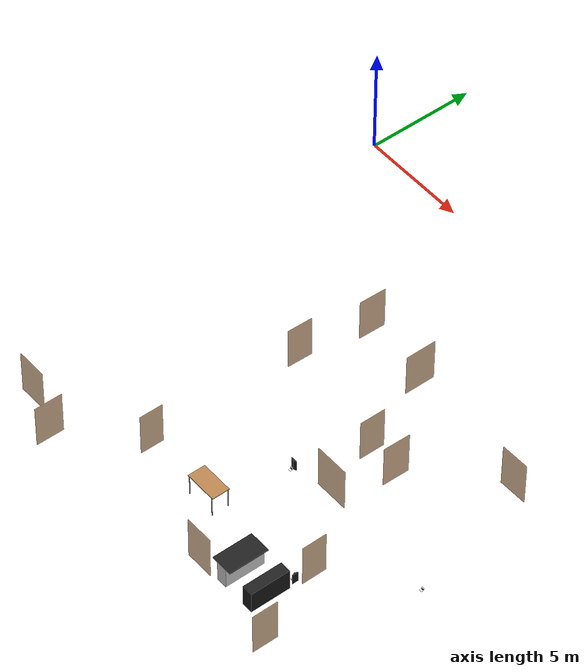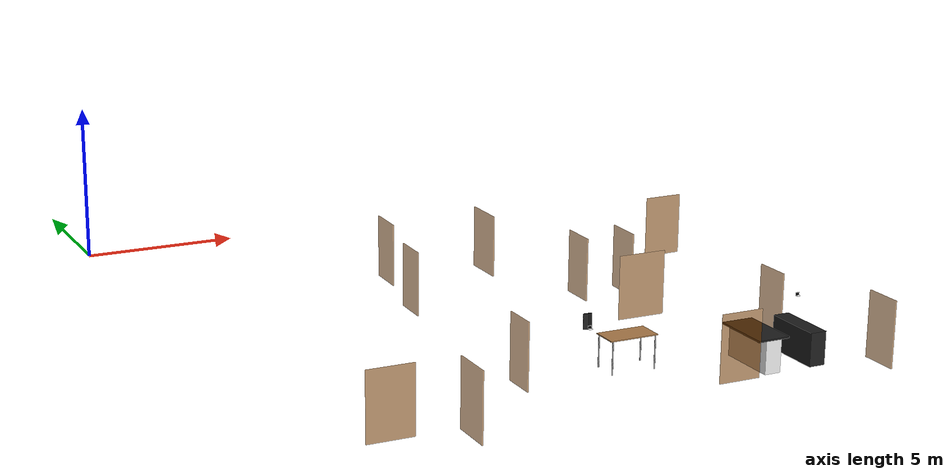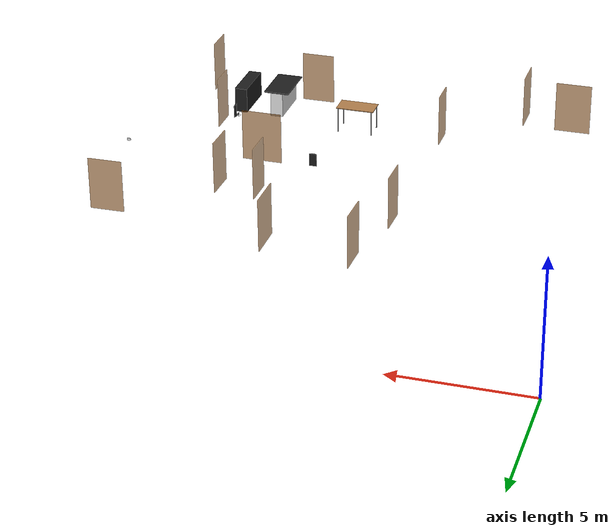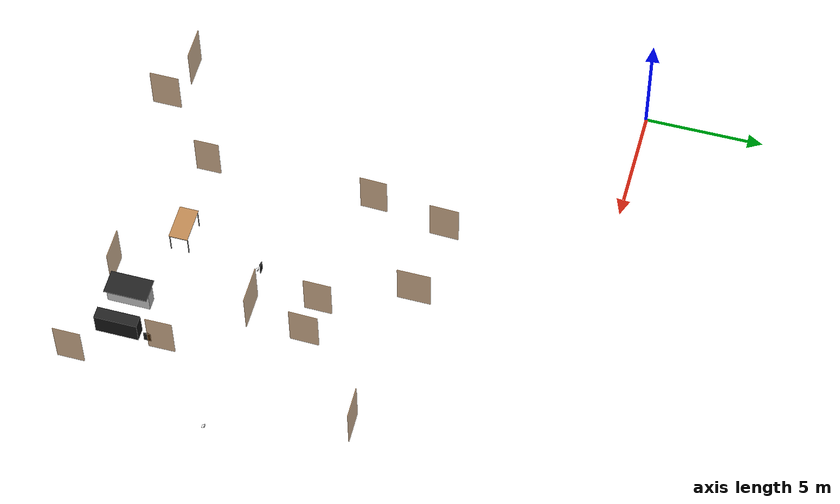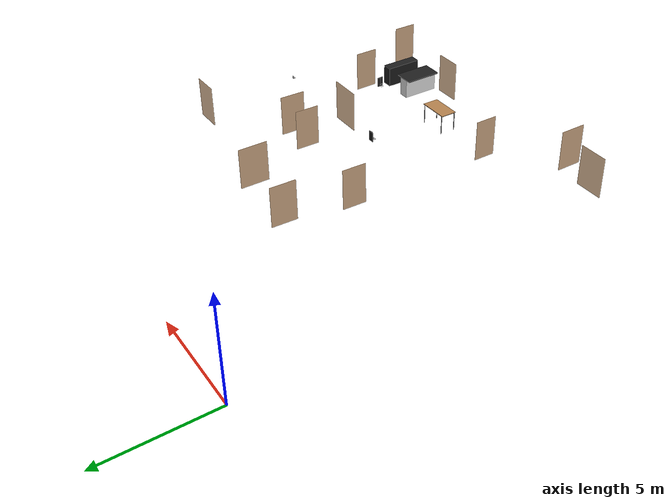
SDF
<sdf version="1.7">
 <world name="world">
  <scene><ambient>0.8 0.8 0.8 1.0</ambient><background>0 0 0</background><grid>false</grid></scene>
  <include><uri>model://sun</uri></include>
  <model name="door_kitchen">
   <pose>16.080245142462395 -16.25646027308161 0.0 0 0 -1.562457432607192</pose>
   <link name="right">
    <pose>0 0 1.01 0 0 0</pose>
    <visual name="right_visual">
     <geometry><box><size>1.109589746622178 0.03 2.0</size></box></geometry>
     <material><ambient>0.5 0.25 0 0.6</ambient><diffuse>0.5 0.25 0 0.6</diffuse></material>
    </visual>
    <collision name="right_collision">
     <geometry><box><size>1.109589746622178 0.03 2.0</size></box></geometry>
     <surface><contact><collide_bitmask>0x02</collide_bitmask></contact></surface>
    </collision>
    <inertial>
     <mass>50.0</mass>
     <inertia><ixx>16.670416666666668</ixx><iyy>21.79662252420446</iyy><izz>5.133705857537789</izz></inertia>
    </inertial>
   </link>
   <joint name="right_joint" type="revolute">
    <parent>world</parent>
    <child>right</child>
    <axis><xyz>0 0 -1</xyz><limit><lower>0</lower><upper>1.57</upper></limit></axis>
    <pose>0.559794873311089 0 0 0 0 0</pose>
   </joint>
   <plugin name="door_kitchen" filename="libdoor.so">
    <v_max_door>0.5</v_max_door>
    <a_max_door>0.3</a_max_door>
    <a_nom_door>0.15</a_nom_door>
    <dx_min_door>0.01</dx_min_door>
    <f_max_door>500.0</f_max_door>
    <door name="door_kitchen" type="SwingDoor" left_joint_name="empty_joint" right_joint_name="right_joint"/>
   </plugin>
  </model>
  <model name="door_bathroom1">
   <pose>17.428003476694457 -19.630355640118523 0.0 0 0 1.5695099001705253</pose>
   <link name="right">
    <pose>0 0 1.01 0 0 0</pose>
    <visual name="right_visual">
     <geometry><box><size>1.145627315076036 0.03 2.0</size></box></geometry>
     <material><ambient>0.5 0.25 0 0.6</ambient><diffuse>0.5 0.25 0 0.6</diffuse></material>
    </visual>
    <collision name="right_collision">
     <geometry><box><size>1.145627315076036 0.03 2.0</size></box></geometry>
     <surface><contact><collide_bitmask>0x02</collide_bitmask></contact></surface>
    </collision>
    <inertial>
     <mass>50.0</mass>
     <inertia><ixx>16.670416666666668</ixx><iyy>22.13525810436803</iyy><izz>5.472341437701363</izz></inertia>
    </inertial>
   </link>
   <joint name="right_joint" type="revolute">
    <parent>world</parent>
    <child>right</child>
    <axis><xyz>0 0 -1</xyz><limit><lower>0</lower><upper>1.57</upper></limit></axis>
    <pose>0.577813657538018 0 0 0 0 0</pose>
   </joint>
   <plugin name="door_bathroom1" filename="libdoor.so">
    <v_max_door>0.5</v_max_door>
    <a_max_door>0.3</a_max_door>
    <a_nom_door>0.15</a_nom_door>
    <dx_min_door>0.01</dx_min_door>
    <f_max_door>500.0</f_max_door>
    <door name="door_bathroom1" type="SwingDoor" left_joint_name="empty_joint" right_joint_name="right_joint"/>
   </plugin>
  </model>
  <model name="door_warehouse1">
   <pose>7.325118281252149 -17.05888332344462 0.0 0 0 1.5707963267948966</pose>
   <link name="right">
    <pose>0 0 1.01 0 0 0</pose>
    <visual name="right_visual">
     <geometry><box><size>1.0544860697012142 0.03 2.0</size></box></geometry>
     <material><ambient>0.5 0.25 0 0.6</ambient><diffuse>0.5 0.25 0 0.6</diffuse></material>
    </visual>
    <collision name="right_collision">
     <geometry><box><size>1.0544860697012142 0.03 2.0</size></box></geometry>
     <surface><contact><collide_bitmask>0x02</collide_bitmask></contact></surface>
    </collision>
    <inertial>
     <mass>50.0</mass>
     <inertia><ixx>16.670416666666668</ixx><iyy>21.299753629974642</iyy><izz>4.6368369633079745</izz></inertia>
    </inertial>
   </link>
   <joint name="right_joint" type="revolute">
    <parent>world</parent>
    <child>right</child>
    <axis><xyz>0 0 -1</xyz><limit><lower>0</lower><upper>1.57</upper></limit></axis>
    <pose>0.5322430348506071 0 0 0 0 0</pose>
   </joint>
   <plugin name="door_warehouse1" filename="libdoor.so">
    <v_max_door>0.5</v_max_door>
    <a_max_door>0.3</a_max_door>
    <a_nom_door>0.15</a_nom_door>
    <dx_min_door>0.01</dx_min_door>
    <f_max_door>500.0</f_max_door>
    <door name="door_warehouse1" type="SwingDoor" left_joint_name="empty_joint" right_joint_name="right_joint"/>
   </plugin>
  </model>
  <model name="door_warehouse2">
   <pose>7.365881657643422 -9.8875816241503 0.0 0 0 -1.5939307383721164</pose>
   <link name="right">
    <pose>0 0 1.01 0 0 0</pose>
    <visual name="right_visual">
     <geometry><box><size>1.145935674024048 0.03 2.0</size></box></geometry>
     <material><ambient>0.5 0.25 0 0.6</ambient><diffuse>0.5 0.25 0 0.6</diffuse></material>
    </visual>
    <collision name="right_collision">
     <geometry><box><size>1.145935674024048 0.03 2.0</size></box></geometry>
     <surface><contact><collide_bitmask>0x02</collide_bitmask></contact></surface>
    </collision>
    <inertial>
     <mass>50.0</mass>
     <inertia><ixx>16.670416666666668</ixx><iyy>22.13820237083729</iyy><izz>5.475285704170623</izz></inertia>
    </inertial>
   </link>
   <joint name="right_joint" type="revolute">
    <parent>world</parent>
    <child>right</child>
    <axis><xyz>0 0 -1</xyz><limit><lower>0</lower><upper>1.57</upper></limit></axis>
    <pose>0.577967837012024 0 0 0 0 0</pose>
   </joint>
   <plugin name="door_warehouse2" filename="libdoor.so">
    <v_max_door>0.5</v_max_door>
    <a_max_door>0.3</a_max_door>
    <a_nom_door>0.15</a_nom_door>
    <dx_min_door>0.01</dx_min_door>
    <f_max_door>500.0</f_max_door>
    <door name="door_warehouse2" type="SwingDoor" left_joint_name="empty_joint" right_joint_name="right_joint"/>
   </plugin>
  </model>
  <model name="door_mini_rrl">
   <pose>11.262049732117953 -7.104056498998965 0.0 0 0 1.5709644434662853</pose>
   <link name="right">
    <pose>0 0 1.01 0 0 0</pose>
    <visual name="right_visual">
     <geometry><box><size>1.4048548915879961 0.03 2.0</size></box></geometry>
     <material><ambient>0.5 0.25 0 0.6</ambient><diffuse>0.5 0.25 0 0.6</diffuse></material>
    </visual>
    <collision name="right_collision">
     <geometry><box><size>1.4048548915879961 0.03 2.0</size></box></geometry>
     <surface><contact><collide_bitmask>0x02</collide_bitmask></contact></surface>
    </collision>
    <inertial>
     <mass>50.0</mass>
     <inertia><ixx>16.670416666666668</ixx><iyy>24.89007194341134</iyy><izz>8.227155276744668</izz></inertia>
    </inertial>
   </link>
   <joint name="right_joint" type="revolute">
    <parent>world</parent>
    <child>right</child>
    <axis><xyz>0 0 -1</xyz><limit><lower>0</lower><upper>1.57</upper></limit></axis>
    <pose>0.7074274457939981 0 0 0 0 0</pose>
   </joint>
   <plugin name="door_mini_rrl" filename="libdoor.so">
    <v_max_door>0.5</v_max_door>
    <a_max_door>0.3</a_max_door>
    <a_nom_door>0.15</a_nom_door>
    <dx_min_door>0.01</dx_min_door>
    <f_max_door>500.0</f_max_door>
    <door name="door_mini_rrl" type="SwingDoor" left_joint_name="empty_joint" right_joint_name="right_joint"/>
   </plugin>
  </model>
  <model name="door_office">
   <pose>7.937768141452234 -6.737632100278285 0.0 0 0 1.5431487698929705</pose>
   <link name="right">
    <pose>0 0 1.01 0 0 0</pose>
    <visual name="right_visual">
     <geometry><box><size>1.23763989223551 0.03 2.0</size></box></geometry>
     <material><ambient>0.5 0.25 0 0.6</ambient><diffuse>0.5 0.25 0 0.6</diffuse></material>
    </visual>
    <collision name="right_collision">
     <geometry><box><size>1.23763989223551 0.03 2.0</size></box></geometry>
     <surface><contact><collide_bitmask>0x02</collide_bitmask></contact></surface>
    </collision>
    <inertial>
     <mass>50.0</mass>
     <inertia><ixx>16.670416666666668</ixx><iyy>23.048968761886353</iyy><izz>6.3860520952196875</izz></inertia>
    </inertial>
   </link>
   <joint name="right_joint" type="revolute">
    <parent>world</parent>
    <child>right</child>
    <axis><xyz>0 0 -1</xyz><limit><lower>0</lower><upper>1.57</upper></limit></axis>
    <pose>0.623819946117755 0 0 0 0 0</pose>
   </joint>
   <plugin name="door_office" filename="libdoor.so">
    <v_max_door>0.5</v_max_door>
    <a_max_door>0.3</a_max_door>
    <a_nom_door>0.15</a_nom_door>
    <dx_min_door>0.01</dx_min_door>
    <f_max_door>500.0</f_max_door>
    <door name="door_office" type="SwingDoor" left_joint_name="empty_joint" right_joint_name="right_joint"/>
   </plugin>
  </model>
  <model name="door_recordings">
   <pose>17.571492940198677 -7.8671334262709545 0.0 0 0 -3.123409491376528</pose>
   <link name="right">
    <pose>0 0 1.01 0 0 0</pose>
    <visual name="right_visual">
     <geometry><box><size>1.2818565879323982 0.03 2.0</size></box></geometry>
     <material><ambient>0.5 0.25 0 0.6</ambient><diffuse>0.5 0.25 0 0.6</diffuse></material>
    </visual>
    <collision name="right_collision">
     <geometry><box><size>1.2818565879323982 0.03 2.0</size></box></geometry>
     <surface><contact><collide_bitmask>0x02</collide_bitmask></contact></surface>
    </collision>
    <inertial>
     <mass>50.0</mass>
     <inertia><ixx>16.670416666666668</ixx><iyy>23.513151300107044</iyy><izz>6.850234633440376</izz></inertia>
    </inertial>
   </link>
   <joint name="right_joint" type="revolute">
    <parent>world</parent>
    <child>right</child>
    <axis><xyz>0 0 -1</xyz><limit><lower>0</lower><upper>1.57</upper></limit></axis>
    <pose>0.6459282939661991 0 0 0 0 0</pose>
   </joint>
   <plugin name="door_recordings" filename="libdoor.so">
    <v_max_door>0.5</v_max_door>
    <a_max_door>0.3</a_max_door>
    <a_nom_door>0.15</a_nom_door>
    <dx_min_door>0.01</dx_min_door>
    <f_max_door>500.0</f_max_door>
    <door name="door_recordings" type="SwingDoor" left_joint_name="empty_joint" right_joint_name="right_joint"/>
   </plugin>
  </model>
  <model name="door_closet">
   <pose>2.567656634711677 -19.15182947860628 0.0 0 0 3.141165260570925</pose>
   <link name="right">
    <pose>0 0 1.01 0 0 0</pose>
    <visual name="right_visual">
     <geometry><box><size>1.3813464334366092 0.03 2.0</size></box></geometry>
     <material><ambient>0.5 0.25 0 0.6</ambient><diffuse>0.5 0.25 0 0.6</diffuse></material>
    </visual>
    <collision name="right_collision">
     <geometry><box><size>1.3813464334366092 0.03 2.0</size></box></geometry>
     <surface><contact><collide_bitmask>0x02</collide_bitmask></contact></surface>
    </collision>
    <inertial>
     <mass>50.0</mass>
     <inertia><ixx>16.670416666666668</ixx><iyy>24.61715820486684</iyy><izz>7.95424153820017</izz></inertia>
    </inertial>
   </link>
   <joint name="right_joint" type="revolute">
    <parent>world</parent>
    <child>right</child>
    <axis><xyz>0 0 -1</xyz><limit><lower>0</lower><upper>1.57</upper></limit></axis>
    <pose>0.6956732167183046 0 0 0 0 0</pose>
   </joint>
   <plugin name="door_closet" filename="libdoor.so">
    <v_max_door>0.5</v_max_door>
    <a_max_door>0.3</a_max_door>
    <a_nom_door>0.15</a_nom_door>
    <dx_min_door>0.01</dx_min_door>
    <f_max_door>500.0</f_max_door>
    <door name="door_closet" type="SwingDoor" left_joint_name="empty_joint" right_joint_name="right_joint"/>
   </plugin>
  </model>
  <model name="door_rrl">
   <pose>12.727222051301975 -10.716377478932754 0.0 0 0 1.5616494156602039</pose>
   <link name="right">
    <pose>0 0 1.01 0 0 0</pose>
    <visual name="right_visual">
     <geometry><box><size>1.1623851166268635 0.03 2.0</size></box></geometry>
     <material><ambient>0.5 0.25 0 0.6</ambient><diffuse>0.5 0.25 0 0.6</diffuse></material>
    </visual>
    <collision name="right_collision">
     <geometry><box><size>1.1623851166268635 0.03 2.0</size></box></geometry>
     <surface><contact><collide_bitmask>0x02</collide_bitmask></contact></surface>
    </collision>
    <inertial>
     <mass>50.0</mass>
     <inertia><ixx>16.670416666666668</ixx><iyy>22.296413163981864</iyy><izz>5.633496497315196</izz></inertia>
    </inertial>
   </link>
   <joint name="right_joint" type="revolute">
    <parent>world</parent>
    <child>right</child>
    <axis><xyz>0 0 -1</xyz><limit><lower>0</lower><upper>1.57</upper></limit></axis>
    <pose>0.5861925583134318 0 0 0 0 0</pose>
   </joint>
   <plugin name="door_rrl" filename="libdoor.so">
    <v_max_door>0.5</v_max_door>
    <a_max_door>0.3</a_max_door>
    <a_nom_door>0.15</a_nom_door>
    <dx_min_door>0.01</dx_min_door>
    <f_max_door>500.0</f_max_door>
    <door name="door_rrl" type="SwingDoor" left_joint_name="empty_joint" right_joint_name="right_joint"/>
   </plugin>
  </model>
  <model name="door_cafeteria">
   <pose>13.459129316830579 -13.296819125933453 0.0 0 0 0.00034506554875947566</pose>
   <link name="right">
    <pose>0 0 1.01 0 0 0</pose>
    <visual name="right_visual">
     <geometry><box><size>1.5409707459290378 0.03 2.0</size></box></geometry>
     <material><ambient>0.5 0.25 0 0.6</ambient><diffuse>0.5 0.25 0 0.6</diffuse></material>
    </visual>
    <collision name="right_collision">
     <geometry><box><size>1.5409707459290378 0.03 2.0</size></box></geometry>
     <surface><contact><collide_bitmask>0x02</collide_bitmask></contact></surface>
    </collision>
    <inertial>
     <mass>50.0</mass>
     <inertia><ixx>16.670416666666668</ixx><iyy>26.56079516587123</iyy><izz>9.897878499204564</izz></inertia>
    </inertial>
   </link>
   <joint name="right_joint" type="revolute">
    <parent>world</parent>
    <child>right</child>
    <axis><xyz>0 0 -1</xyz><limit><lower>0</lower><upper>1.57</upper></limit></axis>
    <pose>0.7754853729645189 0 0 0 0 0</pose>
   </joint>
   <plugin name="door_cafeteria" filename="libdoor.so">
    <v_max_door>0.5</v_max_door>
    <a_max_door>0.3</a_max_door>
    <a_nom_door>0.15</a_nom_door>
    <dx_min_door>0.01</dx_min_door>
    <f_max_door>500.0</f_max_door>
    <door name="door_cafeteria" type="SwingDoor" left_joint_name="empty_joint" right_joint_name="right_joint"/>
   </plugin>
  </model>
  <model name="door_bathroom2">
   <pose>4.527856701036794 -19.8008224706388 0.0 0 0 -1.5707963267948966</pose>
   <link name="right">
    <pose>0 0 1.01 0 0 0</pose>
    <visual name="right_visual">
     <geometry><box><size>1.2545269131443122 0.03 2.0</size></box></geometry>
     <material><ambient>0.5 0.25 0 0.6</ambient><diffuse>0.5 0.25 0 0.6</diffuse></material>
    </visual>
    <collision name="right_collision">
     <geometry><box><size>1.2545269131443122 0.03 2.0</size></box></geometry>
     <surface><contact><collide_bitmask>0x02</collide_bitmask></contact></surface>
    </collision>
    <inertial>
     <mass>50.0</mass>
     <inertia><ixx>16.670416666666668</ixx><iyy>23.224324065847487</iyy><izz>6.561407399180819</izz></inertia>
    </inertial>
   </link>
   <joint name="right_joint" type="revolute">
    <parent>world</parent>
    <child>right</child>
    <axis><xyz>0 0 -1</xyz><limit><lower>0</lower><upper>1.57</upper></limit></axis>
    <pose>0.6322634565721561 0 0 0 0 0</pose>
   </joint>
   <plugin name="door_bathroom2" filename="libdoor.so">
    <v_max_door>0.5</v_max_door>
    <a_max_door>0.3</a_max_door>
    <a_nom_door>0.15</a_nom_door>
    <dx_min_door>0.01</dx_min_door>
    <f_max_door>500.0</f_max_door>
    <door name="door_bathroom2" type="SwingDoor" left_joint_name="empty_joint" right_joint_name="right_joint"/>
   </plugin>
  </model>
  <model name="door_servers">
   <pose>14.277994487649003 -10.834891569593305 0.0 0 0 -1.589951878239416</pose>
   <link name="right">
    <pose>0 0 1.01 0 0 0</pose>
    <visual name="right_visual">
     <geometry><box><size>1.2142160836735563 0.03 2.0</size></box></geometry>
     <material><ambient>0.5 0.25 0 0.6</ambient><diffuse>0.5 0.25 0 0.6</diffuse></material>
    </visual>
    <collision name="right_collision">
     <geometry><box><size>1.2142160836735563 0.03 2.0</size></box></geometry>
     <surface><contact><collide_bitmask>0x02</collide_bitmask></contact></surface>
    </collision>
    <inertial>
     <mass>50.0</mass>
     <inertia><ixx>16.670416666666668</ixx><iyy>22.809669574381456</iyy><izz>6.146752907714786</izz></inertia>
    </inertial>
   </link>
   <joint name="right_joint" type="revolute">
    <parent>world</parent>
    <child>right</child>
    <axis><xyz>0 0 -1</xyz><limit><lower>0</lower><upper>1.57</upper></limit></axis>
    <pose>0.6121080418367781 0 0 0 0 0</pose>
   </joint>
   <plugin name="door_servers" filename="libdoor.so">
    <v_max_door>0.5</v_max_door>
    <a_max_door>0.3</a_max_door>
    <a_nom_door>0.15</a_nom_door>
    <dx_min_door>0.01</dx_min_door>
    <f_max_door>500.0</f_max_door>
    <door name="door_servers" type="SwingDoor" left_joint_name="empty_joint" right_joint_name="right_joint"/>
   </plugin>
  </model>
  <model name="door_entrance">
   <pose>13.026440893176261 -19.214922027623263 0.0 0 0 0.0</pose>
   <link name="right">
    <pose>0 0 1.01 0 0 0</pose>
    <visual name="right_visual">
     <geometry><box><size>1.2890365354624291 0.03 2.0</size></box></geometry>
     <material><ambient>0.5 0.25 0 0.6</ambient><diffuse>0.5 0.25 0 0.6</diffuse></material>
    </visual>
    <collision name="right_collision">
     <geometry><box><size>1.2890365354624291 0.03 2.0</size></box></geometry>
     <surface><contact><collide_bitmask>0x02</collide_bitmask></contact></surface>
    </collision>
    <inertial>
     <mass>50.0</mass>
     <inertia><ixx>16.670416666666668</ixx><iyy>23.590063290654097</iyy><izz>6.927146623987427</izz></inertia>
    </inertial>
   </link>
   <joint name="right_joint" type="revolute">
    <parent>world</parent>
    <child>right</child>
    <axis><xyz>0 0 -1</xyz><limit><lower>0</lower><upper>1.57</upper></limit></axis>
    <pose>0.6495182677312146 0 0 0 0 0</pose>
   </joint>
   <plugin name="door_entrance" filename="libdoor.so">
    <v_max_door>0.5</v_max_door>
    <a_max_door>0.3</a_max_door>
    <a_nom_door>0.15</a_nom_door>
    <dx_min_door>0.01</dx_min_door>
    <f_max_door>500.0</f_max_door>
    <door name="door_entrance" type="SwingDoor" left_joint_name="empty_joint" right_joint_name="right_joint"/>
   </plugin>
  </model>
  <rmf_charger_waypoints name="charger_waypoints">
   <rmf_vertex name="cleaner_charging_station" x="18.981144609116733" y="-14.123057978258101" level="L1"/>
  </rmf_charger_waypoints>
  <plugin name="gazebo_ros_state" filename="libgazebo_ros_state.so">
   <ros><namespace>/gazebo</namespace></ros>
   <update_rate>5.0</update_rate>
  </plugin>
  <model name="charging_station_1">
   <static>1</static>
   <include><uri>model://charging_station_v2</uri></include>
   <pose>19.041 -13.65 0.03 0 0 1.565374</pose>
  </model>
  <model name="starbots_table_ingestor">
   <static>1</static>
   <include><uri>model://starbots_table_ingestor</uri></include>
   <pose>10.75 -17.0 0 0 0 0</pose>
  </model>
  <model name="countertop">
   <static>1</static>
   <include><uri>model://countertop</uri></include>
   <pose>15.7 -18.2 0.5 0 0 0</pose>
  </model>
  <model name="starbots_bartender_dispenser">
   <static>1</static>
   <include><uri>model://starbots_bartender_dispenser</uri></include>
   <pose>14.2 -18.2 0.5 0 0 0</pose>
  </model>
  <model name="trapezium">
   <static>1</static>
   <include><uri>model://trapezium</uri></include>
   <pose>15.83 -16.95 0.2 -3.1416 0 1.57</pose>
  </model>
  <model name="charging_station_2">
   <static>1</static>
   <include><uri>model://charging_station_v2</uri></include>
   <pose>15.6 -16.95 0.03 0 0 0</pose>
  </model>
  <model name="trapezium_2">
   <static>1</static>
   <include><uri>model://trapezium</uri></include>
   <pose>11.5 -13.5 0.2 -3.1416 0 3.1416</pose>
  </model>
  <model name="charging_station_3">
   <static>1</static>
   <include><uri>model://charging_station_v2</uri></include>
   <pose>11.5 -13.75 0.03 0 0 1.57</pose>
  </model>
 </world>
</sdf>

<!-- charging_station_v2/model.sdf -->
<sdf version="1.6">
  <model name="charging_station_v2">
    <pose>0.0 0.0 0.0 0.0 0.0 0.0</pose>
    <static>true</static>

    <link name="main_link">
      <pose>0.0 0.0 0.0 0.0 0.0 0.0</pose>

      <collision name="collision">
        <pose>0 0 0 0 0 0</pose>
        <geometry>
          <mesh>
            <uri>model://charging_station_v2/meshes/charging_station_col_v2.stl</uri>
            <scale>0.5 0.5 0.5</scale>
          </mesh>
        </geometry>
      </collision>

      <visual name="visual">
        <pose>0 0 0 0 0 0</pose>
        <geometry>
          <mesh>
            <uri>model://charging_station_v2/meshes/charging_station_visual_v2.dae</uri>
            <scale>0.5 0.5 0.5</scale>
          </mesh>
        </geometry>
      </visual>

    </link>

  </model>
</sdf>

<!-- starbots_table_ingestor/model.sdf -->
<sdf version="1.5">
  <model name="starbots_table_ingestor">
    <static>true</static>
    <link name="link">
      <collision name="surface">
        <pose>0 0 1.0 0 0 0</pose>
        <geometry>
          <box>
            <size>1.5 0.8 0.03</size>
          </box>
        </geometry>
        <surface>
          <friction>
            <ode>
              <mu>0.6</mu>
              <mu2>0.6</mu2>
            </ode>
          </friction>
        </surface>
      </collision>
      <visual name="visual1">
        <pose>0 0 1.0 0 0 0</pose>
        <geometry>
          <box>
            <size>1.5 0.8 0.03</size>
          </box>
        </geometry>
        <material>
          <script>
            <uri>file://media/materials/scripts/gazebo.material</uri>
            <name>Gazebo/Wood</name>
          </script>
        </material>
      </visual>
      <collision name="front_left_leg_c">
        <pose>0.68 0.38 0.5 0 0 0</pose>
        <geometry>
          <cylinder>
            <radius>0.02</radius>
            <length>1.0</length>
          </cylinder>
        </geometry>
      </collision>
      <visual name="front_left_leg_v">
        <pose>0.68 0.38 0.5 0 0 0</pose>
        <geometry>
          <cylinder>
            <radius>0.02</radius>
            <length>1.0</length>
          </cylinder>
        </geometry>
        <material>
          <script>
            <uri>file://media/materials/scripts/gazebo.material</uri>
            <name>Gazebo/Grey</name>
          </script>
        </material>
      </visual>
      <collision name="front_right_leg_c">
        <pose>0.68 -0.38 0.5 0 0 0</pose>
        <geometry>
          <cylinder>
            <radius>0.02</radius>
            <length>1.0</length>
          </cylinder>
        </geometry>
      </collision>
      <visual name="front_right_leg_v">
        <pose>0.68 -0.38 0.5 0 0 0</pose>
        <geometry>
          <cylinder>
            <radius>0.02</radius>
            <length>1.0</length>
          </cylinder>
        </geometry>
        <material>
          <script>
            <uri>file://media/materials/scripts/gazebo.material</uri>
            <name>Gazebo/Grey</name>
          </script>
        </material>
      </visual>
      <collision name="back_right_leg_c">
        <pose>-0.68 -0.38 0.5 0 0 0</pose>
        <geometry>
          <cylinder>
            <radius>0.02</radius>
            <length>1.0</length>
          </cylinder>
        </geometry>
      </collision>
      <visual name="back_right_leg_v">
        <pose>-0.68 -0.38 0.5 0 0 0</pose>
        <geometry>
          <cylinder>
            <radius>0.02</radius>
            <length>1.0</length>
          </cylinder>
        </geometry>
        <material>
          <script>
            <uri>file://media/materials/scripts/gazebo.material</uri>
            <name>Gazebo/Grey</name>
          </script>
        </material>
      </visual>
      <collision name="back_left_leg_c">
        <pose>-0.68 0.38 0.5 0 0 0</pose>
        <geometry>
          <cylinder>
            <radius>0.02</radius>
            <length>1.0</length>
          </cylinder>
        </geometry>
      </collision>
      <visual name="back_left_leg_v">
        <pose>-0.68 0.38 0.5 0 0 0</pose>
        <geometry>
          <cylinder>
            <radius>0.02</radius>
            <length>1.0</length>
          </cylinder>
        </geometry>
        <material>
          <script>
            <uri>file://media/materials/scripts/gazebo.material</uri>
            <name>Gazebo/Grey</name>
          </script>
        </material>
      </visual>
    </link>

    <plugin name="teleport_ingestor" filename="libteleport_ingestor.so">
    </plugin>

  </model>
</sdf>

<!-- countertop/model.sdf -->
<sdf version='1.5'>
  <model name="countertop">
      <static>1</static>
      <link name='countertop'>
        <inertial>
          <mass>50.25</mass>
          <inertia>
            <ixx>0.00015</ixx>
            <ixy>0.000000</ixy>
            <ixz>0.000000</ixz>
            <iyy>0.00015</iyy>
            <iyz>0.000000</iyz>
            <izz>0.00015</izz>
          </inertia>
        </inertial>
        <collision name='countertop_c'>
          <geometry>
            <box>
              <size>0.5 1.8 1.0</size>
            </box>
          </geometry>
          <laser_retro>8000</laser_retro>
          <surface>
            <friction>
              <ode>
                <mu>30.0</mu>
                <mu2>30.0</mu2>
              </ode>
            </friction>
            <contact>
              <ode>
                <kp>1000000.0</kp>
                <kd>100.0</kd>
                <max_vel>1.0</max_vel>
                <min_depth>0.002</min_depth>
              </ode>
            </contact>
          </surface>
        </collision>
        <visual name='countertop_v'>
          <geometry>
            <box>
              <size>0.5 1.8 1.0</size>
            </box>
          </geometry>
          <material>
            <script>
              <uri>file://media/materials/scripts/gazebo.material</uri>
              <name>Gazebo/Black</name>
            </script>
          </material>
        </visual>
        <velocity_decay>
          <linear>0.000000</linear>
          <angular>0.000000</angular>
        </velocity_decay>
        <self_collide>0</self_collide>
        <kinematic>0</kinematic>
        <gravity>1</gravity>
      </link>
  </model>
</sdf>

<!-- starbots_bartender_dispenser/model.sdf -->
<sdf version='1.7'>
  <model name="starbots_bartender_dispenser">
      <static>1</static>
      <link name='countertop'>
        <inertial>
          <mass>50.25</mass>
          <inertia>
            <ixx>0.00015</ixx>
            <ixy>0.000000</ixy>
            <ixz>0.000000</ixz>
            <iyy>0.00015</iyy>
            <iyz>0.000000</iyz>
            <izz>0.00015</izz>
          </inertia>
        </inertial>
        <collision name='countertop_c'>
          <geometry>
            <box>
              <size>0.5 1.8 1.0</size>
            </box>
          </geometry>
          <laser_retro>8000</laser_retro>
          <surface>
            <friction>
              <ode>
                <mu>30.0</mu>
                <mu2>30.0</mu2>
              </ode>
            </friction>
            <contact>
              <ode>
                <kp>1000000.0</kp>
                <kd>100.0</kd>
                <max_vel>1.0</max_vel>
                <min_depth>0.002</min_depth>
              </ode>
            </contact>
          </surface>
        </collision>
        <visual name='countertop_v'>
          <geometry>
            <box>
              <size>0.5 1.8 1.0</size>
            </box>
          </geometry>
          <material>
            <script>
              <uri>file://media/materials/scripts/gazebo.material</uri>
              <name>Gazebo/White</name>
            </script>
          </material>
        </visual>
        <collision name='top_c'>
          <pose>0 0 0.5 0 0 0</pose>

          <geometry>
            <box>
              <size>1.0 1.81 0.05</size>
            </box>
          </geometry>
          <laser_retro>8000</laser_retro>
          <surface>
            <friction>
              <ode>
                <mu>30.0</mu>
                <mu2>30.0</mu2>
              </ode>
            </friction>
            <contact>
              <ode>
                <kp>1000000.0</kp>
                <kd>100.0</kd>
                <max_vel>1.0</max_vel>
                <min_depth>0.002</min_depth>
              </ode>
            </contact>
          </surface>
        </collision>
        <visual name='top_v'>
          <pose>0 0 0.5 0 0 0</pose>

          <geometry>
            <box>
              <size>1.0 1.81 0.05</size>
            </box>
          </geometry>
          <material>
            <script>
              <uri>file://media/materials/scripts/gazebo.material</uri>
              <name>Gazebo/Black</name>
            </script>
          </material>
        </visual>

        <velocity_decay>
          <linear>0.000000</linear>
          <angular>0.000000</angular>
        </velocity_decay>
        <self_collide>0</self_collide>
        <kinematic>0</kinematic>
        <gravity>1</gravity>
      </link>

    <plugin name="teleport_dispenser" filename="libteleport_dispenser.so">
    </plugin>

  </model>
</sdf>

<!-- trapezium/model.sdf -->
<sdf version='1.5'>
  <model name="trapezium">
      <static>1</static>
      <link name='link'>
        <inertial>
          <mass>0.25</mass>
          <inertia>
            <ixx>0.00015</ixx>
            <ixy>0.000000</ixy>
            <ixz>0.000000</ixz>
            <iyy>0.00015</iyy>
            <iyz>0.000000</iyz>
            <izz>0.00015</izz>
          </inertia>
        </inertial>
        <collision name='front_c'>
          <geometry>
            <box>
              <size>0.30 0.01 0.50</size>
            </box>
          </geometry>
          <laser_retro>8000</laser_retro>
          <surface>
            <friction>
              <ode>
                <mu>30.0</mu>
                <mu2>30.0</mu2>
              </ode>
            </friction>
            <contact>
              <ode>
                <kp>1000000.0</kp>
                <kd>100.0</kd>
                <max_vel>1.0</max_vel>
                <min_depth>0.002</min_depth>
              </ode>
            </contact>
          </surface>
        </collision>
        <visual name='front_v'>
          <geometry>
            <box>
              <size>0.30 0.01 0.50</size>
            </box>
          </geometry>
          <material>
            <script>
              <uri>file://media/materials/scripts/gazebo.material</uri>
              <name>Gazebo/Black</name>
            </script>
          </material>
        </visual>
        <collision name="side_1_c">
          <pose>0.075 -0.0256515 0 0 0 0.3490658503988659</pose>
          <geometry>
            <box>
              <size>0.159626 0.01 0.5</size>
            </box>
          </geometry>
          <laser_retro>8000</laser_retro>
        </collision>
        <visual name="side_1_v">
          <pose>0.075 -0.0256515 0 0 0 0.3490658503988659</pose>
          <geometry>
            <box>
              <size>0.159626 0.01 0.5</size>
            </box>
          </geometry>
          <material>
            <script>
              <uri>file://media/materials/scripts/gazebo.material</uri>
              <name>Gazebo/Black</name>
            </script>
          </material>
        </visual>
        <collision name="side_2_c">
          <pose>-0.075 -0.0256515 0 0 0 -0.3490658503988659</pose>
          <geometry>
            <box>
              <size>0.159626 0.01 0.5</size>
            </box>
          </geometry>
          <laser_retro>8000</laser_retro>
        </collision>
        <visual name="side_2_v">
          <pose>-0.075 -0.0256515 0 0 0 -0.3490658503988659</pose>
          <geometry>
            <box>
              <size>0.159626 0.01 0.5</size>
            </box>
          </geometry>
          <material>
            <script>
              <uri>file://media/materials/scripts/gazebo.material</uri>
              <name>Gazebo/Black</name>
            </script>
          </material>
        </visual>
        <velocity_decay>
          <linear>0.000000</linear>
          <angular>0.000000</angular>
        </velocity_decay>
        <self_collide>0</self_collide>
        <kinematic>0</kinematic>
        <gravity>1</gravity>
      </link>
  </model>
</sdf>
